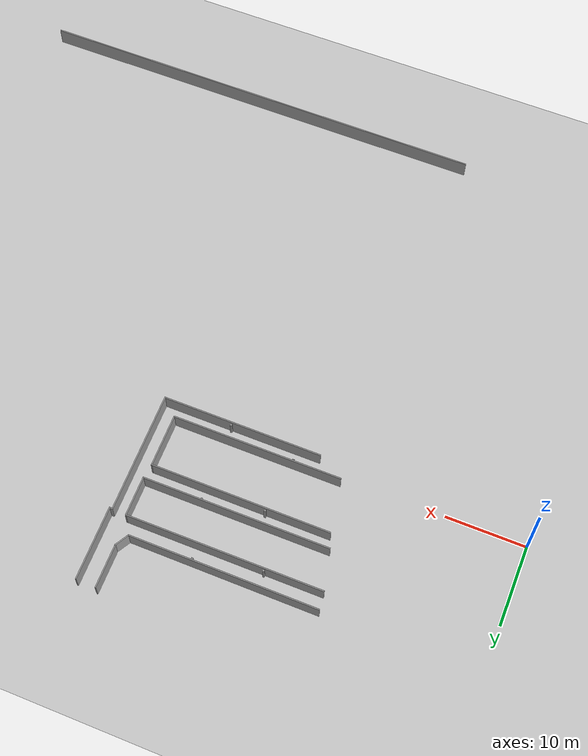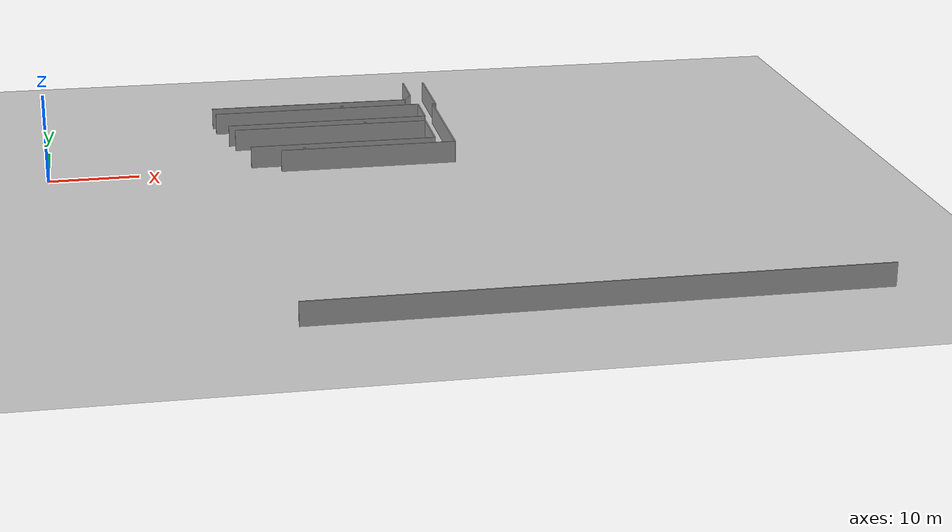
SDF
<sdf version="1.6">
 <world name="default">
  <model name="ground_plane">
   <static>1</static>
   <link name="link">
    <collision name="collision">
     <geometry><plane><normal>0 0 1</normal><size>100 100</size></plane></geometry>
     <surface><friction><ode><mu>100</mu><mu2>50</mu2></ode></friction></surface>
    </collision>
    <visual name="visual">
     <cast_shadows>0</cast_shadows>
     <geometry><plane><normal>0 0 1</normal><size>100 100</size></plane></geometry>
     <material>
      <script><uri>file://media/materials/scripts/gazebo.material</uri><name>Gazebo/Grey</name></script>
     </material>
    </visual>
   </link>
  </model>
  <model name="CMU">
   <pose>62.2844 43.535 0 0 -0 0</pose>
   <link name="Wall_105">
    <collision name="Wall_105_Collision">
     <geometry><box><size>21.25 0.15 2.5</size></box></geometry>
     <pose>0 0 1.25 0 -0 0</pose>
    </collision>
    <visual name="Wall_105_Visual">
     <pose>0 0 1.25 0 -0 0</pose>
     <geometry><box><size>21.25 0.15 2.5</size></box></geometry>
     <material>
      <script><uri>file://media/materials/scripts/gazebo.material</uri><name>Gazebo/Grey</name></script>
      <ambient>1 1 1 1</ambient>
     </material>
    </visual>
    <pose>-28.9806 -42.505 0 0 -0 0</pose>
   </link>
   <link name="Wall_106">
    <collision name="Wall_106_Collision">
     <geometry><box><size>6.75 0.15 2.5</size></box></geometry>
     <pose>0 0 1.25 0 -0 0</pose>
    </collision>
    <visual name="Wall_106_Visual">
     <pose>0 0 1.25 0 -0 0</pose>
     <geometry><box><size>6.75 0.15 2.5</size></box></geometry>
     <material>
      <script><uri>file://media/materials/scripts/gazebo.material</uri><name>Gazebo/Grey</name></script>
      <ambient>1 1 1 1</ambient>
     </material>
    </visual>
    <pose>-18.4306 -39.205 0 0 -0 1.5708</pose>
   </link>
   <link name="Wall_107">
    <collision name="Wall_107_Collision">
     <geometry><box><size>22.5 0.15 2.5</size></box></geometry>
     <pose>0 0 1.25 0 -0 0</pose>
    </collision>
    <visual name="Wall_107_Visual">
     <pose>0 0 1.25 0 -0 0</pose>
     <geometry><box><size>22.5 0.15 2.5</size></box></geometry>
     <material>
      <script><uri>file://media/materials/scripts/gazebo.material</uri><name>Gazebo/Grey</name></script>
      <ambient>1 1 1 1</ambient>
     </material>
    </visual>
    <pose>-29.6056 -35.905 0 0 -0 3.14159</pose>
   </link>
   <link name="Wall_111">
    <collision name="Wall_111_Collision">
     <geometry><box><size>23.3656 0.15 2.5</size></box></geometry>
     <pose>0 0 1.25 0 -0 0</pose>
    </collision>
    <visual name="Wall_111_Visual">
     <pose>0 0 1.25 0 -0 0</pose>
     <geometry><box><size>23.3656 0.15 2.5</size></box></geometry>
     <material>
      <script><uri>file://media/materials/scripts/gazebo.material</uri><name>Gazebo/Grey</name></script>
      <ambient>1 1 1 1</ambient>
     </material>
    </visual>
    <pose>-29.7838 -34.1074 0 0 -0 0.002004</pose>
   </link>
   <link name="Wall_112">
    <collision name="Wall_112_Collision">
     <geometry><box><size>5.08241 0.15 2.5</size></box></geometry>
     <pose>0 0 1.25 0 -0 0</pose>
    </collision>
    <visual name="Wall_112_Visual">
     <pose>0 0 1.25 0 -0 0</pose>
     <geometry><box><size>5.08241 0.15 2.5</size></box></geometry>
     <material>
      <script><uri>file://media/materials/scripts/gazebo.material</uri><name>Gazebo/Grey</name></script>
      <ambient>1 1 1 1</ambient>
     </material>
    </visual>
    <pose>-18.1761 -31.6184 0 0 -0 1.5708</pose>
   </link>
   <link name="Wall_113">
    <collision name="Wall_113_Collision">
     <geometry><box><size>24.5286 0.15 2.5</size></box></geometry>
     <pose>0 0 1.25 0 -0 0</pose>
    </collision>
    <visual name="Wall_113_Visual">
     <pose>0 0 1.25 0 -0 0</pose>
     <geometry><box><size>24.5286 0.15 2.5</size></box></geometry>
     <material>
      <script><uri>file://media/materials/scripts/gazebo.material</uri><name>Gazebo/Grey</name></script>
      <ambient>1 1 1 1</ambient>
     </material>
    </visual>
    <pose>-30.3654 -29.1759 0 0 0 -3.13968</pose>
   </link>
   <link name="Wall_115">
    <collision name="Wall_115_Collision">
     <geometry><box><size>20 0.15 2.5</size></box></geometry>
     <pose>0 0 1.25 0 -0 0</pose>
    </collision>
    <visual name="Wall_115_Visual">
     <pose>0 0 1.25 0 -0 0</pose>
     <geometry><box><size>20 0.15 2.5</size></box></geometry>
     <material>
      <script><uri>file://media/materials/scripts/gazebo.material</uri><name>Gazebo/Grey</name></script>
      <ambient>1 1 1 1</ambient>
     </material>
    </visual>
    <pose>-26.3464 -44.3474 0 0 -0 0</pose>
   </link>
   <link name="Wall_116">
    <collision name="Wall_116_Collision">
     <geometry><box><size>15.25 0.15 2.5</size></box></geometry>
     <pose>0 0 1.25 0 -0 0</pose>
    </collision>
    <visual name="Wall_116_Visual">
     <pose>0 0 1.25 0 -0 0</pose>
     <geometry><box><size>15.25 0.15 2.5</size></box></geometry>
     <material>
      <script><uri>file://media/materials/scripts/gazebo.material</uri><name>Gazebo/Grey</name></script>
      <ambient>1 1 1 1</ambient>
     </material>
    </visual>
    <pose>-16.4214 -36.7974 0 0 -0 1.5708</pose>
   </link>
   <link name="Wall_117">
    <collision name="Wall_117_Collision">
     <geometry><box><size>0.5 0.15 2.5</size></box></geometry>
     <pose>0 0 1.25 0 -0 0</pose>
    </collision>
    <visual name="Wall_117_Visual">
     <pose>0 0 1.25 0 -0 0</pose>
     <geometry><box><size>0.5 0.15 2.5</size></box></geometry>
     <material>
      <script><uri>file://media/materials/scripts/gazebo.material</uri><name>Gazebo/Grey</name></script>
      <ambient>1 1 1 1</ambient>
     </material>
    </visual>
    <pose>-16.2464 -29.2474 0 0 -0 0</pose>
   </link>
   <link name="Wall_118">
    <collision name="Wall_118_Collision">
     <geometry><box><size>9.25 0.15 2.5</size></box></geometry>
     <pose>0 0 1.25 0 -0 0</pose>
    </collision>
    <visual name="Wall_118_Visual">
     <pose>0 0 1.25 0 -0 0</pose>
     <geometry><box><size>9.25 0.15 2.5</size></box></geometry>
     <material>
      <script><uri>file://media/materials/scripts/gazebo.material</uri><name>Gazebo/Grey</name></script>
      <ambient>1 1 1 1</ambient>
     </material>
    </visual>
    <pose>-16.0714 -24.6974 0 0 -0 1.5708</pose>
   </link>
   <link name="Wall_232">
    <collision name="Wall_232_Collision">
     <geometry><box><size>58 0.15 2.5</size></box></geometry>
     <pose>0 0 1.25 0 -0 0</pose>
    </collision>
    <visual name="Wall_232_Visual">
     <pose>0 0 1.25 0 -0 0</pose>
     <geometry><box><size>58 0.15 2.5</size></box></geometry>
     <material>
      <script><uri>file://media/materials/scripts/gazebo.material</uri><name>Gazebo/Grey</name></script>
      <ambient>1 1 1 1</ambient>
     </material>
    </visual>
    <pose>-10.2837 -89.0235 0 0 -0 0</pose>
   </link>
   <link name="Wall_40">
    <collision name="Wall_40_Collision">
     <geometry><box><size>23.5 0.15 2.5</size></box></geometry>
     <pose>0 0 1.25 0 -0 0</pose>
    </collision>
    <visual name="Wall_40_Visual">
     <pose>0 0 1.25 0 -0 0</pose>
     <geometry><box><size>23.5 0.15 2.5</size></box></geometry>
     <material>
      <script><uri>file://media/materials/scripts/gazebo.material</uri><name>Gazebo/Grey</name></script>
      <ambient>1 1 1 1</ambient>
     </material>
    </visual>
    <pose>-31.1478 -27.0296 0 0 -0 0</pose>
   </link>
   <link name="Wall_41">
    <collision name="Wall_41_Collision">
     <geometry><box><size>2 0.15 2.5</size></box></geometry>
     <pose>0 0 1.25 0 -0 0</pose>
    </collision>
    <visual name="Wall_41_Visual">
     <pose>0 0 1.25 0 -0 0</pose>
     <geometry><box><size>2 0.15 2.5</size></box></geometry>
     <material>
      <script><uri>file://media/materials/scripts/gazebo.material</uri><name>Gazebo/Grey</name></script>
      <ambient>1 1 1 1</ambient>
     </material>
    </visual>
    <pose>-19.0103 -26.2285 0 0 -0 1.0472</pose>
   </link>
   <link name="Wall_42">
    <collision name="Wall_42_Collision">
     <geometry><box><size>5.5 0.15 2.5</size></box></geometry>
     <pose>0 0 1.25 0 -0 0</pose>
    </collision>
    <visual name="Wall_42_Visual">
     <pose>0 0 1.25 0 -0 0</pose>
     <geometry><box><size>5.5 0.15 2.5</size></box></geometry>
     <material>
      <script><uri>file://media/materials/scripts/gazebo.material</uri><name>Gazebo/Grey</name></script>
      <ambient>1 1 1 1</ambient>
     </material>
    </visual>
    <pose>-18.5478 -22.7524 0 0 -0 1.5708</pose>
   </link>
   <static>1</static>
  </model>
  <model name="unit_box_0_clone_clone_11">
   <pose>35.0402 16.2737 1.07512 7e-06 3e-06 -0.012924</pose>
   <link name="link">
    <inertial>
     <mass>1</mass>
     <inertia>
      <ixx>0.166667</ixx>
      <ixy>0</ixy>
      <ixz>0</ixz>
      <iyy>0.166667</iyy>
      <iyz>0</iyz>
      <izz>0.166667</izz>
     </inertia>
    </inertial>
    <collision name="collision"><geometry><box><size>0.230557 0.245067 2.15023</size></box></geometry></collision>
    <visual name="visual">
     <geometry><box><size>0.230557 0.245067 2.15023</size></box></geometry>
     <material>
      <script><name>Gazebo/Grey</name><uri>file://media/materials/scripts/gazebo.material</uri></script>
     </material>
    </visual>
   </link>
  </model>
  <model name="unit_box_0_clone_clone_12">
   <pose>26.9433 14.5472 1.07512 4e-06 -0 0.001917</pose>
   <link name="link">
    <inertial>
     <mass>1</mass>
     <inertia>
      <ixx>0.166667</ixx>
      <ixy>0</ixy>
      <ixz>0</ixz>
      <iyy>0.166667</iyy>
      <iyz>0</iyz>
      <izz>0.166667</izz>
     </inertia>
    </inertial>
    <collision name="collision"><geometry><box><size>0.230557 0.245067 2.15023</size></box></geometry></collision>
    <visual name="visual">
     <geometry><box><size>0.230557 0.245067 2.15023</size></box></geometry>
     <material>
      <script><name>Gazebo/Grey</name><uri>file://media/materials/scripts/gazebo.material</uri></script>
     </material>
    </visual>
   </link>
  </model>
  <model name="unit_box_0_clone_clone_13">
   <pose>36.8752 9.2388 1.07512 6e-06 -0 0.002093</pose>
   <link name="link">
    <inertial>
     <mass>1</mass>
     <inertia>
      <ixx>0.166667</ixx>
      <ixy>0</ixy>
      <ixz>0</ixz>
      <iyy>0.166667</iyy>
      <iyz>0</iyz>
      <izz>0.166667</izz>
     </inertia>
    </inertial>
    <collision name="collision"><geometry><box><size>0.230557 0.245067 2.15023</size></box></geometry></collision>
    <visual name="visual">
     <geometry><box><size>0.230557 0.245067 2.15023</size></box></geometry>
     <material>
      <script><name>Gazebo/Grey</name><uri>file://media/materials/scripts/gazebo.material</uri></script>
     </material>
    </visual>
   </link>
  </model>
  <model name="unit_box_0_clone_clone_14">
   <pose>29.477 7.82768 1.07512 1e-06 -6e-06 -0.00043</pose>
   <link name="link">
    <inertial>
     <mass>1</mass>
     <inertia>
      <ixx>0.166667</ixx>
      <ixy>0</ixy>
      <ixz>0</ixz>
      <iyy>0.166667</iyy>
      <iyz>0</iyz>
      <izz>0.166667</izz>
     </inertia>
    </inertial>
    <collision name="collision"><geometry><box><size>0.230557 0.245067 2.15023</size></box></geometry></collision>
    <visual name="visual">
     <geometry><box><size>0.230557 0.245067 2.15023</size></box></geometry>
     <material>
      <script><name>Gazebo/Grey</name><uri>file://media/materials/scripts/gazebo.material</uri></script>
     </material>
    </visual>
   </link>
  </model>
  <model name="unit_box_0_clone_clone_15">
   <pose>37.2347 -0.614769 1.07512 0 -1e-06 9.3e-05</pose>
   <link name="link">
    <inertial>
     <mass>1</mass>
     <inertia>
      <ixx>0.166667</ixx>
      <ixy>0</ixy>
      <ixz>0</ixz>
      <iyy>0.166667</iyy>
      <iyz>0</iyz>
      <izz>0.166667</izz>
     </inertia>
    </inertial>
    <collision name="collision"><geometry><box><size>0.230557 0.245067 2.15023</size></box></geometry></collision>
    <visual name="visual">
     <geometry><box><size>0.230557 0.245067 2.15023</size></box></geometry>
     <material>
      <script><name>Gazebo/Grey</name><uri>file://media/materials/scripts/gazebo.material</uri></script>
     </material>
    </visual>
   </link>
  </model>
  <model name="unit_box_0_clone_clone_16">
   <pose>28.7424 0.831506 1.07512 1e-06 1e-06 -0.008335</pose>
   <link name="link">
    <inertial>
     <mass>1</mass>
     <inertia>
      <ixx>0.166667</ixx>
      <ixy>0</ixy>
      <ixz>0</ixz>
      <iyy>0.166667</iyy>
      <iyz>0</iyz>
      <izz>0.166667</izz>
     </inertia>
    </inertial>
    <collision name="collision"><geometry><box><size>0.230557 0.245067 2.15023</size></box></geometry></collision>
    <visual name="visual">
     <geometry><box><size>0.230557 0.245067 2.15023</size></box></geometry>
     <material>
      <script><name>Gazebo/Grey</name><uri>file://media/materials/scripts/gazebo.material</uri></script>
     </material>
    </visual>
   </link>
  </model>
 </world>
</sdf>
